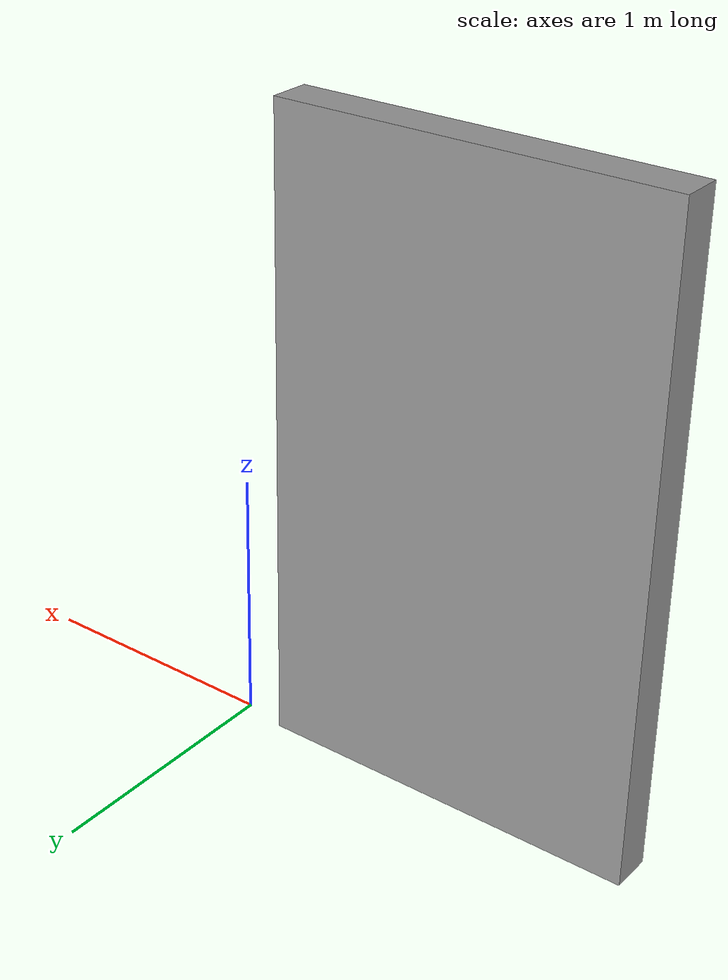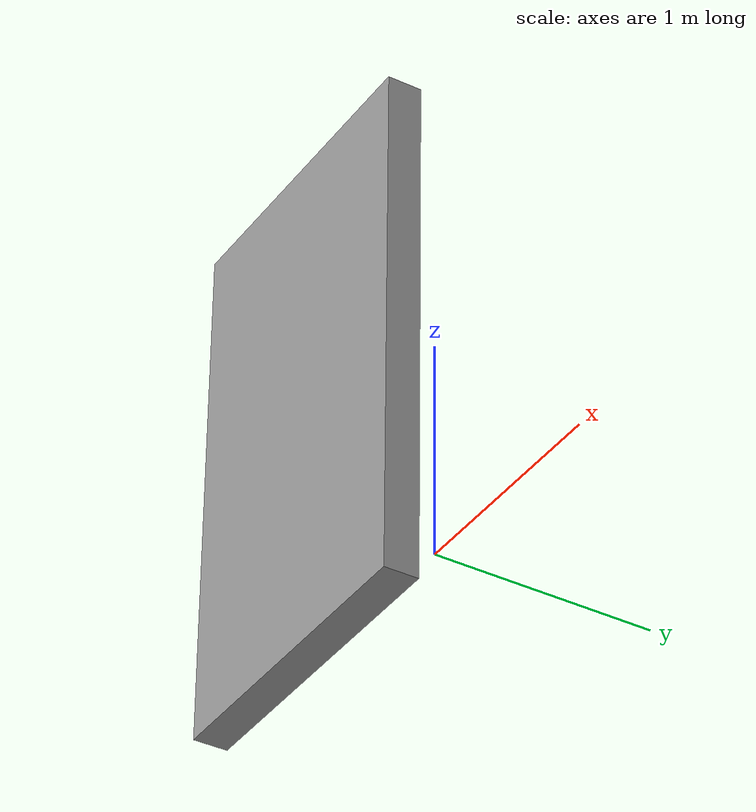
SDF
<?xml version='1.0'?>
<sdf version='1.6'>
  <model name='wall'>
    <link name='Wall_0'>
      <pose frame=''>-0.925523 -0.044595 0 0 -0 3.14159</pose>
      <self_collide>0</self_collide>
      <enable_wind>0</enable_wind>
      <kinematic>0</kinematic>
      <inertial>
        <inertia>
          <ixx>0</ixx>
          <ixy>0</ixy>
          <ixz>0</ixz>
          <iyy>0</iyy>
          <iyz>0</iyz>
          <izz>0</izz>
        </inertia>
        <mass>0</mass>
        <pose frame=''>0 0 0 0 -0 0</pose>
      </inertial>
      <visual name='Wall_0_Visual'>
        <pose frame=''>0 0 1.25 0 -0 0</pose>
        <geometry>
          <box>
            <size>1.50859 0.160067 2.5</size>
          </box>
        </geometry>
        <material>
          <script>
            <uri>file://media/materials/scripts/gazebo.material</uri>
            <name>Gazebo/Grey</name>
          </script>
          <ambient>1 1 1 1</ambient>
        </material>
        <meta>
          <layer>0</layer>
        </meta>
        <transparency>0</transparency>
        <cast_shadows>1</cast_shadows>
      </visual>
      <collision name='Wall_0_Collision'>
        <laser_retro>0</laser_retro>
        <max_contacts>10</max_contacts>
        <pose frame=''>0 0 1.25 0 -0 0</pose>
        <geometry>
          <box>
            <size>1.50859 0.160067 2.5</size>
          </box>
        </geometry>
        <surface>
          <friction>
            <ode>
              <mu>1</mu>
              <mu2>1</mu2>
              <fdir1>0 0 0</fdir1>
              <slip1>0</slip1>
              <slip2>0</slip2>
            </ode>
            <torsional>
              <coefficient>1</coefficient>
              <patch_radius>0</patch_radius>
              <surface_radius>0</surface_radius>
              <use_patch_radius>1</use_patch_radius>
              <ode>
                <slip>0</slip>
              </ode>
            </torsional>
          </friction>
          <bounce>
            <restitution_coefficient>0</restitution_coefficient>
            <threshold>1e+06</threshold>
          </bounce>
          <contact>
            <collide_without_contact>0</collide_without_contact>
            <collide_without_contact_bitmask>1</collide_without_contact_bitmask>
            <collide_bitmask>1</collide_bitmask>
            <ode>
              <soft_cfm>0</soft_cfm>
              <soft_erp>0.2</soft_erp>
              <kp>1e+13</kp>
              <kd>1</kd>
              <max_vel>0.01</max_vel>
              <min_depth>0</min_depth>
            </ode>
            <bullet>
              <split_impulse>1</split_impulse>
              <split_impulse_penetration_threshold>-0.01</split_impulse_penetration_threshold>
              <soft_cfm>0</soft_cfm>
              <soft_erp>0.2</soft_erp>
              <kp>1e+13</kp>
              <kd>1</kd>
            </bullet>
          </contact>
        </surface>
      </collision>
    </link>
    <static>1</static>
    <allow_auto_disable>1</allow_auto_disable>
  </model>
</sdf>
